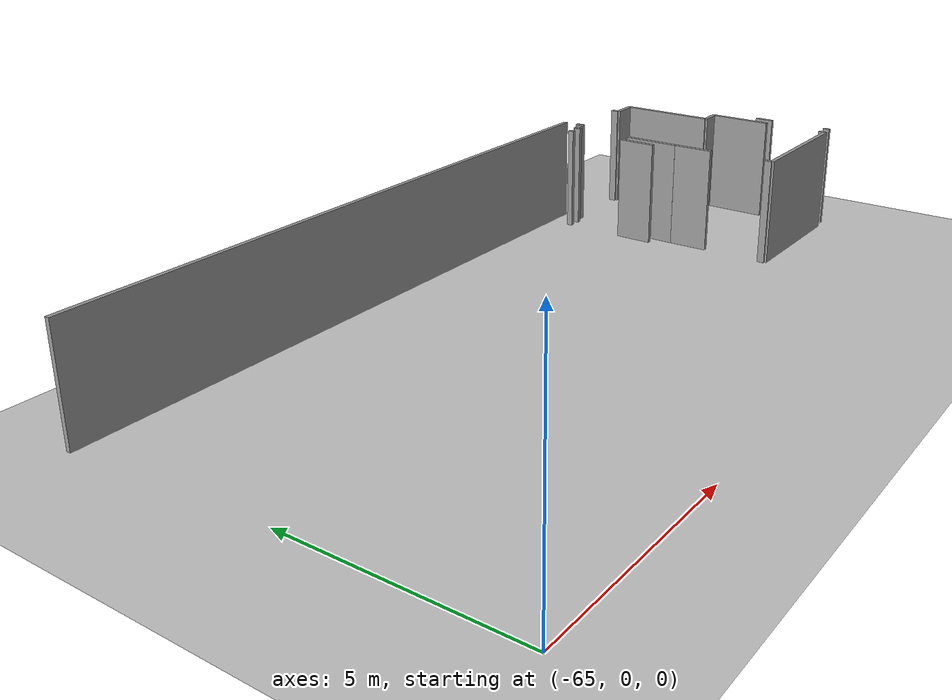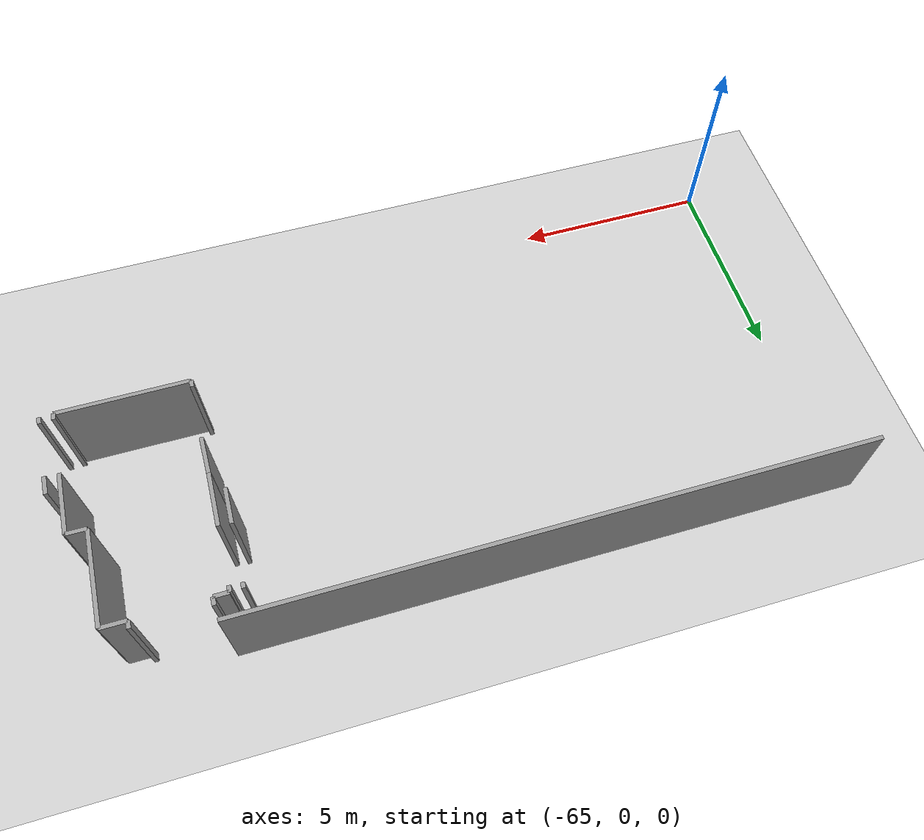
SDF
<sdf version="1.6">
 <world name="default">
  <model name="ground_plane">
   <static>1</static>
   <link name="link">
    <collision name="collision">
     <geometry><plane><normal>0 0 1</normal><size>100 100</size></plane></geometry>
     <surface><friction><ode><mu>100</mu><mu2>50</mu2></ode></friction></surface>
    </collision>
    <visual name="visual">
     <cast_shadows>0</cast_shadows>
     <geometry><plane><normal>0 0 1</normal><size>100 100</size></plane></geometry>
     <material>
      <script><uri>file://media/materials/scripts/gazebo.material</uri><name>Gazebo/Grey</name></script>
     </material>
    </visual>
   </link>
  </model>
  <model name="0510032194_A_40_1_102">
   <static>1</static>
   <link name="Wall_18">
    <collision name="Wall_18_Collision">
     <geometry><box><size>15.3892557336 0.1 2.5</size></box></geometry>
     <pose>7.69462786678 0 1.25 0 0 0</pose>
    </collision>
    <visual name="Wall_18_Visual">
     <pose>7.69462786678 0 1.25 0 0 0</pose>
     <geometry><box><size>15.3892557336 0.1 2.5</size></box></geometry>
     <material>
      <script><uri>file://media/materials/scripts/gazebo.material</uri><name>Gazebo/Grey</name></script>
      <ambient>1 1 1 1</ambient>
     </material>
    </visual>
    <pose>17.7332706193 -14.3678175531 0 0 0 -3.14076660345</pose>
   </link>
   <link name="Wall_45">
    <collision name="Wall_45_Collision">
     <geometry><box><size>1.33059595241 0.1 2.5</size></box></geometry>
     <pose>0.665297976203 0 1.25 0 0 0</pose>
    </collision>
    <visual name="Wall_45_Visual">
     <pose>0.665297976203 0 1.25 0 0 0</pose>
     <geometry><box><size>1.33059595241 0.1 2.5</size></box></geometry>
     <material>
      <script><uri>file://media/materials/scripts/gazebo.material</uri><name>Gazebo/Grey</name></script>
      <ambient>1 1 1 1</ambient>
     </material>
    </visual>
    <pose>17.3843181125 -17.7705176447 0 0 0 1.57079632679</pose>
   </link>
   <link name="Wall_46">
    <collision name="Wall_46_Collision">
     <geometry><box><size>0.152674666938 0.1 2.5</size></box></geometry>
     <pose>0.0763373334689 0 1.25 0 0 0</pose>
    </collision>
    <visual name="Wall_46_Visual">
     <pose>0.0763373334689 0 1.25 0 0 0</pose>
     <geometry><box><size>0.152674666938 0.1 2.5</size></box></geometry>
     <material>
      <script><uri>file://media/materials/scripts/gazebo.material</uri><name>Gazebo/Grey</name></script>
      <ambient>1 1 1 1</ambient>
     </material>
    </visual>
    <pose>17.3843181125 -15.0448744025 0 0 0 1.57079632679</pose>
   </link>
   <link name="Wall_47">
    <collision name="Wall_47_Collision">
     <geometry><box><size>0.363444523543 0.1 2.5</size></box></geometry>
     <pose>0.181722261772 0 1.25 0 0 0</pose>
    </collision>
    <visual name="Wall_47_Visual">
     <pose>0.181722261772 0 1.25 0 0 0</pose>
     <geometry><box><size>0.363444523543 0.1 2.5</size></box></geometry>
     <material>
      <script><uri>file://media/materials/scripts/gazebo.material</uri><name>Gazebo/Grey</name></script>
      <ambient>1 1 1 1</ambient>
     </material>
    </visual>
    <pose>17.3843181125 -14.8921997356 0 0 0 0.0</pose>
   </link>
   <link name="Wall_48">
    <collision name="Wall_48_Collision">
     <geometry><box><size>0.196277839927 0.1 2.5</size></box></geometry>
     <pose>0.0981389199634 0 1.25 0 0 0</pose>
    </collision>
    <visual name="Wall_48_Visual">
     <pose>0.0981389199634 0 1.25 0 0 0</pose>
     <geometry><box><size>0.196277839927 0.1 2.5</size></box></geometry>
     <material>
      <script><uri>file://media/materials/scripts/gazebo.material</uri><name>Gazebo/Grey</name></script>
      <ambient>1 1 1 1</ambient>
     </material>
    </visual>
    <pose>17.747762636 -14.8921997356 0 0 0 1.57079632679</pose>
   </link>
   <link name="Wall_49">
    <collision name="Wall_49_Collision">
     <geometry><box><size>0.181912946202 0.1 2.5</size></box></geometry>
     <pose>0.0909564731008 0 1.25 0 0 0</pose>
    </collision>
    <visual name="Wall_49_Visual">
     <pose>0.0909564731008 0 1.25 0 0 0</pose>
     <geometry><box><size>0.181912946202 0.1 2.5</size></box></geometry>
     <material>
      <script><uri>file://media/materials/scripts/gazebo.material</uri><name>Gazebo/Grey</name></script>
      <ambient>1 1 1 1</ambient>
     </material>
    </visual>
    <pose>19.5320604088 -14.6959218957 0 0 0 -1.57079632679</pose>
   </link>
   <link name="Wall_50">
    <collision name="Wall_50_Collision">
     <geometry><box><size>0.610571544798 0.1 2.5</size></box></geometry>
     <pose>0.305285772399 0 1.25 0 0 0</pose>
    </collision>
    <visual name="Wall_50_Visual">
     <pose>0.305285772399 0 1.25 0 0 0</pose>
     <geometry><box><size>0.610571544798 0.1 2.5</size></box></geometry>
     <material>
      <script><uri>file://media/materials/scripts/gazebo.material</uri><name>Gazebo/Grey</name></script>
      <ambient>1 1 1 1</ambient>
     </material>
    </visual>
    <pose>19.5320604088 -14.8778348419 0 0 0 0.0</pose>
   </link>
   <link name="Wall_51">
    <collision name="Wall_51_Collision">
     <geometry><box><size>2.29660327469 0.1 2.5</size></box></geometry>
     <pose>1.14830163734 0 1.25 0 0 0</pose>
    </collision>
    <visual name="Wall_51_Visual">
     <pose>1.14830163734 0 1.25 0 0 0</pose>
     <geometry><box><size>2.29660327469 0.1 2.5</size></box></geometry>
     <material>
      <script><uri>file://media/materials/scripts/gazebo.material</uri><name>Gazebo/Grey</name></script>
      <ambient>1 1 1 1</ambient>
     </material>
    </visual>
    <pose>20.1426319536 -14.8778348419 0 0 0 -1.57079632679</pose>
   </link>
   <link name="Wall_52">
    <collision name="Wall_52_Collision">
     <geometry><box><size>0.483448591478 0.1 2.5</size></box></geometry>
     <pose>0.241724295739 0 1.25 0 0 0</pose>
    </collision>
    <visual name="Wall_52_Visual">
     <pose>0.241724295739 0 1.25 0 0 0</pose>
     <geometry><box><size>0.483448591478 0.1 2.5</size></box></geometry>
     <material>
      <script><uri>file://media/materials/scripts/gazebo.material</uri><name>Gazebo/Grey</name></script>
      <ambient>1 1 1 1</ambient>
     </material>
    </visual>
    <pose>20.1426319536 -17.1744381165 0 0 0 0.0</pose>
   </link>
   <link name="Wall_53">
    <collision name="Wall_53_Collision">
     <geometry><box><size>1.51301739042 0.1 2.5</size></box></geometry>
     <pose>0.75650869521 0 1.25 0 0 0</pose>
    </collision>
    <visual name="Wall_53_Visual">
     <pose>0.75650869521 0 1.25 0 0 0</pose>
     <geometry><box><size>1.51301739042 0.1 2.5</size></box></geometry>
     <material>
      <script><uri>file://media/materials/scripts/gazebo.material</uri><name>Gazebo/Grey</name></script>
      <ambient>1 1 1 1</ambient>
     </material>
    </visual>
    <pose>20.6260805451 -17.1744381165 0 0 0 -1.57079632679</pose>
   </link>
   <link name="Wall_54">
    <collision name="Wall_54_Collision">
     <geometry><box><size>0.159920675277 0.1 2.5</size></box></geometry>
     <pose>0.0799603376386 0 1.25 0 0 0</pose>
    </collision>
    <visual name="Wall_54_Visual">
     <pose>0.0799603376386 0 1.25 0 0 0</pose>
     <geometry><box><size>0.159920675277 0.1 2.5</size></box></geometry>
     <material>
      <script><uri>file://media/materials/scripts/gazebo.material</uri><name>Gazebo/Grey</name></script>
      <ambient>1 1 1 1</ambient>
     </material>
    </visual>
    <pose>20.6260805451 -20.1108512153 0 0 0 -1.57079632679</pose>
   </link>
   <link name="Wall_55">
    <collision name="Wall_55_Collision">
     <geometry><box><size>3.21964303875 0.1 2.5</size></box></geometry>
     <pose>1.60982151937 0 1.25 0 0 0</pose>
    </collision>
    <visual name="Wall_55_Visual">
     <pose>1.60982151937 0 1.25 0 0 0</pose>
     <geometry><box><size>3.21964303875 0.1 2.5</size></box></geometry>
     <material>
      <script><uri>file://media/materials/scripts/gazebo.material</uri><name>Gazebo/Grey</name></script>
      <ambient>1 1 1 1</ambient>
     </material>
    </visual>
    <pose>20.6260805451 -20.2707718906 0 0 0 3.14159265359</pose>
   </link>
   <link name="Wall_56">
    <collision name="Wall_56_Collision">
     <geometry><box><size>0.171234618123 0.1 2.5</size></box></geometry>
     <pose>0.0856173090613 0 1.25 0 0 0</pose>
    </collision>
    <visual name="Wall_56_Visual">
     <pose>0.0856173090613 0 1.25 0 0 0</pose>
     <geometry><box><size>0.171234618123 0.1 2.5</size></box></geometry>
     <material>
      <script><uri>file://media/materials/scripts/gazebo.material</uri><name>Gazebo/Grey</name></script>
      <ambient>1 1 1 1</ambient>
     </material>
    </visual>
    <pose>17.4064375064 -20.2707718906 0 0 0 1.57079632679</pose>
   </link>
   <link name="Wall_57">
    <collision name="Wall_57_Collision">
     <geometry><box><size>0.932455008144 0.1 2.5</size></box></geometry>
     <pose>0.466227504072 0 1.25 0 0 0</pose>
    </collision>
    <visual name="Wall_57_Visual">
     <pose>0.466227504072 0 1.25 0 0 0</pose>
     <geometry><box><size>0.932455008144 0.1 2.5</size></box></geometry>
     <material>
      <script><uri>file://media/materials/scripts/gazebo.material</uri><name>Gazebo/Grey</name></script>
      <ambient>1 1 1 1</ambient>
     </material>
    </visual>
    <pose>17.4064375064 -18.7027102614 0 0 0 1.59452022629</pose>
   </link>
   <link name="Wall_60">
    <collision name="Wall_60_Collision">
     <geometry><box><size>0.133733346893 0.1 2.5</size></box></geometry>
     <pose>0.0668666734466 0 1.25 0 0 0</pose>
    </collision>
    <visual name="Wall_60_Visual">
     <pose>0.0668666734466 0 1.25 0 0 0</pose>
     <geometry><box><size>0.133733346893 0.1 2.5</size></box></geometry>
     <material>
      <script><uri>file://media/materials/scripts/gazebo.material</uri><name>Gazebo/Grey</name></script>
      <ambient>1 1 1 1</ambient>
     </material>
    </visual>
    <pose>17.0867232788 -14.8994457439 0 0 0 -1.57079632679</pose>
   </link>
   <link name="Wall_61">
    <collision name="Wall_61_Collision">
     <geometry><box><size>0.893928607749 0.1 2.5</size></box></geometry>
     <pose>0.446964303875 0 1.25 0 0 0</pose>
    </collision>
    <visual name="Wall_61_Visual">
     <pose>0.446964303875 0 1.25 0 0 0</pose>
     <geometry><box><size>0.893928607749 0.1 2.5</size></box></geometry>
     <material>
      <script><uri>file://media/materials/scripts/gazebo.material</uri><name>Gazebo/Grey</name></script>
      <ambient>1 1 1 1</ambient>
     </material>
    </visual>
    <pose>17.0867232788 -16.4178022984 0 0 0 -1.57079632679</pose>
   </link>
   <link name="Wall_68">
    <collision name="Wall_68_Collision">
     <geometry><box><size>0.16424285569 0.1 2.5</size></box></geometry>
     <pose>0.082121427845 0 1.25 0 0 0</pose>
    </collision>
    <visual name="Wall_68_Visual">
     <pose>0.082121427845 0 1.25 0 0 0</pose>
     <geometry><box><size>0.16424285569 0.1 2.5</size></box></geometry>
     <material>
      <script><uri>file://media/materials/scripts/gazebo.material</uri><name>Gazebo/Grey</name></script>
      <ambient>1 1 1 1</ambient>
     </material>
    </visual>
    <pose>20.958507068 -20.2574239805 0 0 0 1.57079632679</pose>
   </link>
   <link name="Wall_69">
    <collision name="Wall_69_Collision">
     <geometry><box><size>0.451286484288 0.1 2.5</size></box></geometry>
     <pose>0.225643242144 0 1.25 0 0 0</pose>
    </collision>
    <visual name="Wall_69_Visual">
     <pose>0.225643242144 0 1.25 0 0 0</pose>
     <geometry><box><size>0.451286484288 0.1 2.5</size></box></geometry>
     <material>
      <script><uri>file://media/materials/scripts/gazebo.material</uri><name>Gazebo/Grey</name></script>
      <ambient>1 1 1 1</ambient>
     </material>
    </visual>
    <pose>20.958507068 -18.7025831384 0 0 0 1.57079632679</pose>
   </link>
   <pose>-67.7 23.8502186515 0 0 0 0</pose>
  </model>
 </world>
</sdf>
